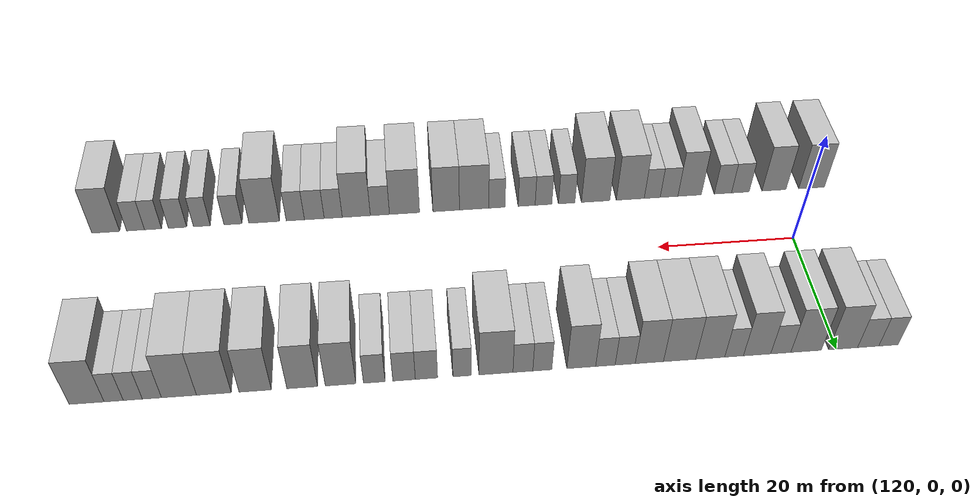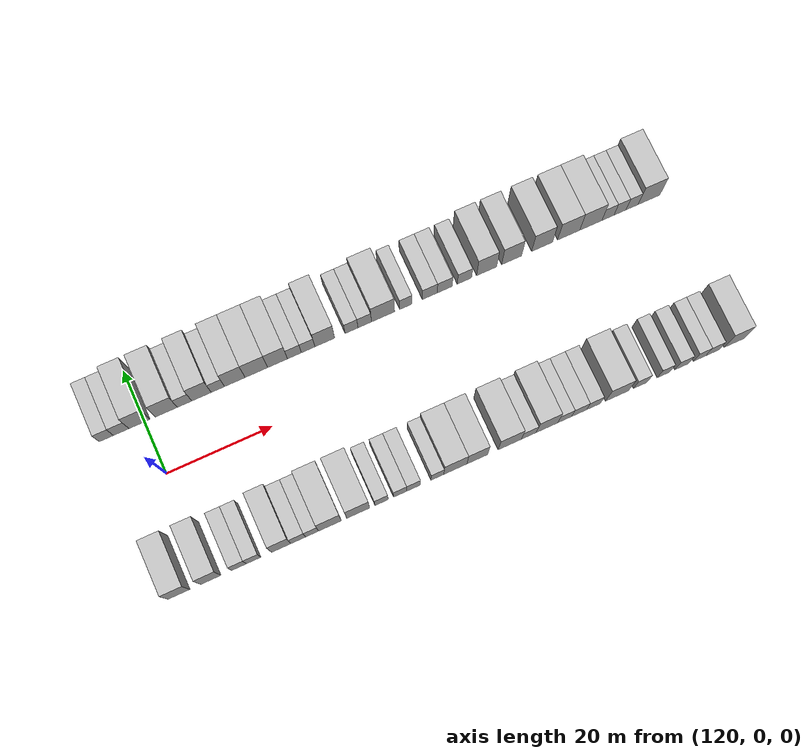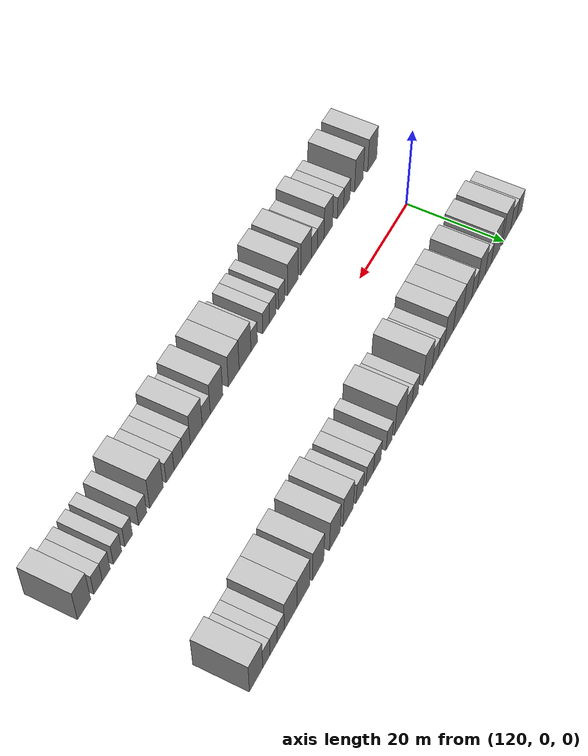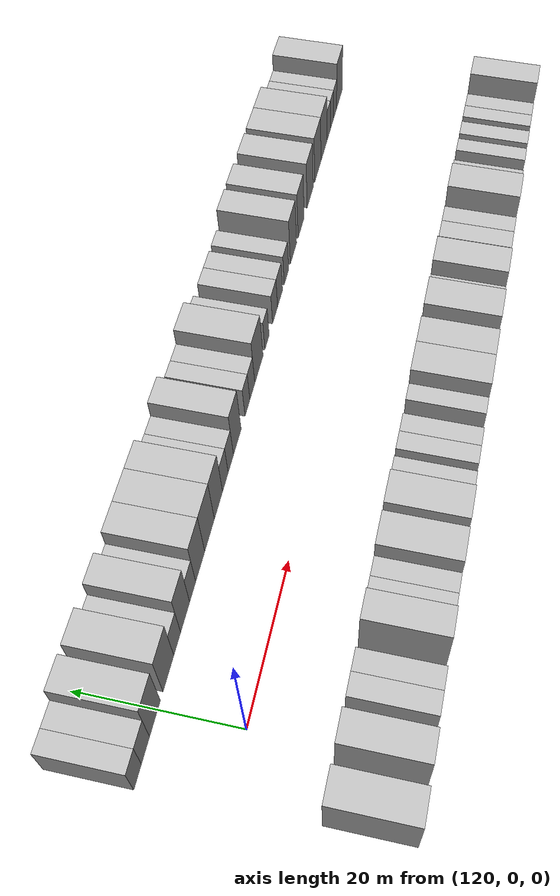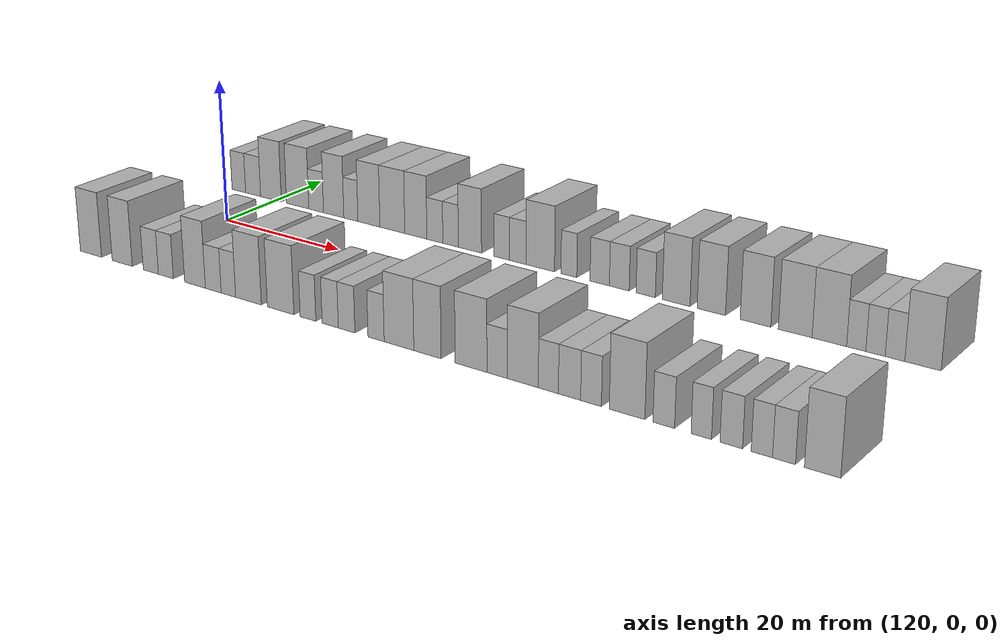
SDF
<sdf version="1.6">
 <world name="default">
  <model name="building_29">
   <static>1</static>
   <pose>112.8695 15.0000 0 0.000000 0.000000 1.570796</pose>
   <link name="link">
    <pose>0 0 3.00 0 0 0</pose>
    <collision name="collision"><geometry><box><size>10.0000 2.6580 6.0000</size></box></geometry></collision>
    <visual name="visual">
     <cast_shadows>0</cast_shadows>
     <geometry><box><size>10.0000 2.6580 6.0000</size></box></geometry>
     <material>
      <script>
       <uri>model://HANNAS_wall/materials/scripts</uri>
       <uri>model://HANNAS_wall/materials/textures</uri>
       <name>vrc/HANNAS_wall</name>
      </script>
     </material>
    </visual>
   </link>
  </model>
  <model name="building_30">
   <static>1</static>
   <pose>115.6552 15.0000 0 0.000000 0.000000 1.570796</pose>
   <link name="link">
    <pose>0 0 3.00 0 0 0</pose>
    <collision name="collision"><geometry><box><size>10.0000 2.9134 6.0000</size></box></geometry></collision>
    <visual name="visual">
     <cast_shadows>0</cast_shadows>
     <geometry><box><size>10.0000 2.9134 6.0000</size></box></geometry>
     <material>
      <script>
       <uri>model://HANNAS_wall/materials/scripts</uri>
       <uri>model://HANNAS_wall/materials/textures</uri>
       <name>vrc/HANNAS_wall</name>
      </script>
     </material>
    </visual>
   </link>
  </model>
  <model name="building_31">
   <static>1</static>
   <pose>119.0930 15.0000 0 0.000000 0.000000 1.570796</pose>
   <link name="link">
    <pose>0 0 4.50 0 0 0</pose>
    <collision name="collision"><geometry><box><size>10.0000 3.9621 9.0000</size></box></geometry></collision>
    <visual name="visual">
     <cast_shadows>0</cast_shadows>
     <geometry><box><size>10.0000 3.9621 9.0000</size></box></geometry>
     <material>
      <script>
       <uri>model://HANNAS_wall/materials/scripts</uri>
       <uri>model://HANNAS_wall/materials/textures</uri>
       <name>vrc/HANNAS_wall</name>
      </script>
     </material>
    </visual>
   </link>
  </model>
  <model name="building_32">
   <static>1</static>
   <pose>124.1526 15.0000 0 0.000000 0.000000 1.570796</pose>
   <link name="link">
    <pose>0 0 4.50 0 0 0</pose>
    <collision name="collision"><geometry><box><size>10.0000 4.1572 9.0000</size></box></geometry></collision>
    <visual name="visual">
     <cast_shadows>0</cast_shadows>
     <geometry><box><size>10.0000 4.1572 9.0000</size></box></geometry>
     <material>
      <script>
       <uri>model://HANNAS_wall/materials/scripts</uri>
       <uri>model://HANNAS_wall/materials/textures</uri>
       <name>vrc/HANNAS_wall</name>
      </script>
     </material>
    </visual>
   </link>
  </model>
  <model name="building_33">
   <static>1</static>
   <pose>127.5959 15.0000 0 0.000000 0.000000 1.570796</pose>
   <link name="link">
    <pose>0 0 3.00 0 0 0</pose>
    <collision name="collision"><geometry><box><size>10.0000 2.7294 6.0000</size></box></geometry></collision>
    <visual name="visual">
     <cast_shadows>0</cast_shadows>
     <geometry><box><size>10.0000 2.7294 6.0000</size></box></geometry>
     <material>
      <script>
       <uri>model://HANNAS_wall/materials/scripts</uri>
       <uri>model://HANNAS_wall/materials/textures</uri>
       <name>vrc/HANNAS_wall</name>
      </script>
     </material>
    </visual>
   </link>
  </model>
  <model name="building_34">
   <static>1</static>
   <pose>130.8069 15.0000 0 0.000000 0.000000 1.570796</pose>
   <link name="link">
    <pose>0 0 4.50 0 0 0</pose>
    <collision name="collision"><geometry><box><size>10.0000 3.6927 9.0000</size></box></geometry></collision>
    <visual name="visual">
     <cast_shadows>0</cast_shadows>
     <geometry><box><size>10.0000 3.6927 9.0000</size></box></geometry>
     <material>
      <script>
       <uri>model://HANNAS_wall/materials/scripts</uri>
       <uri>model://HANNAS_wall/materials/textures</uri>
       <name>vrc/HANNAS_wall</name>
      </script>
     </material>
    </visual>
   </link>
  </model>
  <model name="building_35">
   <static>1</static>
   <pose>133.9190 15.0000 0 0.000000 0.000000 1.570796</pose>
   <link name="link">
    <pose>0 0 3.00 0 0 0</pose>
    <collision name="collision"><geometry><box><size>10.0000 2.5314 6.0000</size></box></geometry></collision>
    <visual name="visual">
     <cast_shadows>0</cast_shadows>
     <geometry><box><size>10.0000 2.5314 6.0000</size></box></geometry>
     <material>
      <script>
       <uri>model://HANNAS_wall/materials/scripts</uri>
       <uri>model://HANNAS_wall/materials/textures</uri>
       <name>vrc/HANNAS_wall</name>
      </script>
     </material>
    </visual>
   </link>
  </model>
  <model name="building_36">
   <static>1</static>
   <pose>137.1407 15.0000 0 0.000000 0.000000 1.570796</pose>
   <link name="link">
    <pose>0 0 4.50 0 0 0</pose>
    <collision name="collision"><geometry><box><size>10.0000 3.9121 9.0000</size></box></geometry></collision>
    <visual name="visual">
     <cast_shadows>0</cast_shadows>
     <geometry><box><size>10.0000 3.9121 9.0000</size></box></geometry>
     <material>
      <script>
       <uri>model://HANNAS_wall/materials/scripts</uri>
       <uri>model://HANNAS_wall/materials/textures</uri>
       <name>vrc/HANNAS_wall</name>
      </script>
     </material>
    </visual>
   </link>
  </model>
  <model name="building_37">
   <static>1</static>
   <pose>141.2572 15.0000 0 0.000000 0.000000 1.570796</pose>
   <link name="link">
    <pose>0 0 4.50 0 0 0</pose>
    <collision name="collision"><geometry><box><size>10.0000 4.3211 9.0000</size></box></geometry></collision>
    <visual name="visual">
     <cast_shadows>0</cast_shadows>
     <geometry><box><size>10.0000 4.3211 9.0000</size></box></geometry>
     <material>
      <script>
       <uri>model://HANNAS_wall/materials/scripts</uri>
       <uri>model://HANNAS_wall/materials/textures</uri>
       <name>vrc/HANNAS_wall</name>
      </script>
     </material>
    </visual>
   </link>
  </model>
  <model name="building_38">
   <static>1</static>
   <pose>145.3111 15.0000 0 0.000000 0.000000 1.570796</pose>
   <link name="link">
    <pose>0 0 4.50 0 0 0</pose>
    <collision name="collision"><geometry><box><size>10.0000 3.7867 9.0000</size></box></geometry></collision>
    <visual name="visual">
     <cast_shadows>0</cast_shadows>
     <geometry><box><size>10.0000 3.7867 9.0000</size></box></geometry>
     <material>
      <script>
       <uri>model://HANNAS_wall/materials/scripts</uri>
       <uri>model://HANNAS_wall/materials/textures</uri>
       <name>vrc/HANNAS_wall</name>
      </script>
     </material>
    </visual>
   </link>
  </model>
  <model name="building_39">
   <static>1</static>
   <pose>148.5455 15.0000 0 0.000000 0.000000 1.570796</pose>
   <link name="link">
    <pose>0 0 3.00 0 0 0</pose>
    <collision name="collision"><geometry><box><size>10.0000 2.6821 6.0000</size></box></geometry></collision>
    <visual name="visual">
     <cast_shadows>0</cast_shadows>
     <geometry><box><size>10.0000 2.6821 6.0000</size></box></geometry>
     <material>
      <script>
       <uri>model://HANNAS_wall/materials/scripts</uri>
       <uri>model://HANNAS_wall/materials/textures</uri>
       <name>vrc/HANNAS_wall</name>
      </script>
     </material>
    </visual>
   </link>
  </model>
  <model name="building_40">
   <static>1</static>
   <pose>151.1820 15.0000 0 0.000000 0.000000 1.570796</pose>
   <link name="link">
    <pose>0 0 3.00 0 0 0</pose>
    <collision name="collision"><geometry><box><size>10.0000 2.5909 6.0000</size></box></geometry></collision>
    <visual name="visual">
     <cast_shadows>0</cast_shadows>
     <geometry><box><size>10.0000 2.5909 6.0000</size></box></geometry>
     <material>
      <script>
       <uri>model://HANNAS_wall/materials/scripts</uri>
       <uri>model://HANNAS_wall/materials/textures</uri>
       <name>vrc/HANNAS_wall</name>
      </script>
     </material>
    </visual>
   </link>
  </model>
  <model name="building_41">
   <static>1</static>
   <pose>154.3863 15.0000 0 0.000000 0.000000 1.570796</pose>
   <link name="link">
    <pose>0 0 4.50 0 0 0</pose>
    <collision name="collision"><geometry><box><size>10.0000 3.8178 9.0000</size></box></geometry></collision>
    <visual name="visual">
     <cast_shadows>0</cast_shadows>
     <geometry><box><size>10.0000 3.8178 9.0000</size></box></geometry>
     <material>
      <script>
       <uri>model://HANNAS_wall/materials/scripts</uri>
       <uri>model://HANNAS_wall/materials/textures</uri>
       <name>vrc/HANNAS_wall</name>
      </script>
     </material>
    </visual>
   </link>
  </model>
  <model name="building_42">
   <static>1</static>
   <pose>159.5500 15.0000 0 0.000000 0.000000 1.570796</pose>
   <link name="link">
    <pose>0 0 3.00 0 0 0</pose>
    <collision name="collision"><geometry><box><size>10.0000 2.5095 6.0000</size></box></geometry></collision>
    <visual name="visual">
     <cast_shadows>0</cast_shadows>
     <geometry><box><size>10.0000 2.5095 6.0000</size></box></geometry>
     <material>
      <script>
       <uri>model://HANNAS_wall/materials/scripts</uri>
       <uri>model://HANNAS_wall/materials/textures</uri>
       <name>vrc/HANNAS_wall</name>
      </script>
     </material>
    </visual>
   </link>
  </model>
  <model name="building_43">
   <static>1</static>
   <pose>162.1150 15.0000 0 0.000000 0.000000 1.570796</pose>
   <link name="link">
    <pose>0 0 3.00 0 0 0</pose>
    <collision name="collision"><geometry><box><size>10.0000 2.6204 6.0000</size></box></geometry></collision>
    <visual name="visual">
     <cast_shadows>0</cast_shadows>
     <geometry><box><size>10.0000 2.6204 6.0000</size></box></geometry>
     <material>
      <script>
       <uri>model://HANNAS_wall/materials/scripts</uri>
       <uri>model://HANNAS_wall/materials/textures</uri>
       <name>vrc/HANNAS_wall</name>
      </script>
     </material>
    </visual>
   </link>
  </model>
  <model name="building_44">
   <static>1</static>
   <pose>165.6594 15.0000 0 0.000000 0.000000 1.570796</pose>
   <link name="link">
    <pose>0 0 4.50 0 0 0</pose>
    <collision name="collision"><geometry><box><size>10.0000 4.4684 9.0000</size></box></geometry></collision>
    <visual name="visual">
     <cast_shadows>0</cast_shadows>
     <geometry><box><size>10.0000 4.4684 9.0000</size></box></geometry>
     <material>
      <script>
       <uri>model://HANNAS_wall/materials/scripts</uri>
       <uri>model://HANNAS_wall/materials/textures</uri>
       <name>vrc/HANNAS_wall</name>
      </script>
     </material>
    </visual>
   </link>
  </model>
  <model name="building_45">
   <static>1</static>
   <pose>170.1038 15.0000 0 0.000000 0.000000 1.570796</pose>
   <link name="link">
    <pose>0 0 3.00 0 0 0</pose>
    <collision name="collision"><geometry><box><size>10.0000 2.4204 6.0000</size></box></geometry></collision>
    <visual name="visual">
     <cast_shadows>0</cast_shadows>
     <geometry><box><size>10.0000 2.4204 6.0000</size></box></geometry>
     <material>
      <script>
       <uri>model://HANNAS_wall/materials/scripts</uri>
       <uri>model://HANNAS_wall/materials/textures</uri>
       <name>vrc/HANNAS_wall</name>
      </script>
     </material>
    </visual>
   </link>
  </model>
  <model name="building_46">
   <static>1</static>
   <pose>174.7673 15.0000 0 0.000000 0.000000 1.570796</pose>
   <link name="link">
    <pose>0 0 3.00 0 0 0</pose>
    <collision name="collision"><geometry><box><size>10.0000 2.9066 6.0000</size></box></geometry></collision>
    <visual name="visual">
     <cast_shadows>0</cast_shadows>
     <geometry><box><size>10.0000 2.9066 6.0000</size></box></geometry>
     <material>
      <script>
       <uri>model://HANNAS_wall/materials/scripts</uri>
       <uri>model://HANNAS_wall/materials/textures</uri>
       <name>vrc/HANNAS_wall</name>
      </script>
     </material>
    </visual>
   </link>
  </model>
  <model name="building_47">
   <static>1</static>
   <pose>177.6863 15.0000 0 0.000000 0.000000 1.570796</pose>
   <link name="link">
    <pose>0 0 3.00 0 0 0</pose>
    <collision name="collision"><geometry><box><size>10.0000 2.9313 6.0000</size></box></geometry></collision>
    <visual name="visual">
     <cast_shadows>0</cast_shadows>
     <geometry><box><size>10.0000 2.9313 6.0000</size></box></geometry>
     <material>
      <script>
       <uri>model://HANNAS_wall/materials/scripts</uri>
       <uri>model://HANNAS_wall/materials/textures</uri>
       <name>vrc/HANNAS_wall</name>
      </script>
     </material>
    </visual>
   </link>
  </model>
  <model name="building_48">
   <static>1</static>
   <pose>181.5532 15.0000 0 0.000000 0.000000 1.570796</pose>
   <link name="link">
    <pose>0 0 3.00 0 0 0</pose>
    <collision name="collision"><geometry><box><size>10.0000 2.8025 6.0000</size></box></geometry></collision>
    <visual name="visual">
     <cast_shadows>0</cast_shadows>
     <geometry><box><size>10.0000 2.8025 6.0000</size></box></geometry>
     <material>
      <script>
       <uri>model://HANNAS_wall/materials/scripts</uri>
       <uri>model://HANNAS_wall/materials/textures</uri>
       <name>vrc/HANNAS_wall</name>
      </script>
     </material>
    </visual>
   </link>
  </model>
  <model name="building_49">
   <static>1</static>
   <pose>185.9270 15.0000 0 0.000000 0.000000 1.570796</pose>
   <link name="link">
    <pose>0 0 4.50 0 0 0</pose>
    <collision name="collision"><geometry><box><size>10.0000 3.9450 9.0000</size></box></geometry></collision>
    <visual name="visual">
     <cast_shadows>0</cast_shadows>
     <geometry><box><size>10.0000 3.9450 9.0000</size></box></geometry>
     <material>
      <script>
       <uri>model://HANNAS_wall/materials/scripts</uri>
       <uri>model://HANNAS_wall/materials/textures</uri>
       <name>vrc/HANNAS_wall</name>
      </script>
     </material>
    </visual>
   </link>
  </model>
  <model name="building_50">
   <static>1</static>
   <pose>190.8726 15.0000 0 0.000000 0.000000 1.570796</pose>
   <link name="link">
    <pose>0 0 4.50 0 0 0</pose>
    <collision name="collision"><geometry><box><size>10.0000 3.9462 9.0000</size></box></geometry></collision>
    <visual name="visual">
     <cast_shadows>0</cast_shadows>
     <geometry><box><size>10.0000 3.9462 9.0000</size></box></geometry>
     <material>
      <script>
       <uri>model://HANNAS_wall/materials/scripts</uri>
       <uri>model://HANNAS_wall/materials/textures</uri>
       <name>vrc/HANNAS_wall</name>
      </script>
     </material>
    </visual>
   </link>
  </model>
  <model name="building_51">
   <static>1</static>
   <pose>196.9149 15.0000 0 0.000000 0.000000 1.570796</pose>
   <link name="link">
    <pose>0 0 4.50 0 0 0</pose>
    <collision name="collision"><geometry><box><size>10.0000 4.1385 9.0000</size></box></geometry></collision>
    <visual name="visual">
     <cast_shadows>0</cast_shadows>
     <geometry><box><size>10.0000 4.1385 9.0000</size></box></geometry>
     <material>
      <script>
       <uri>model://HANNAS_wall/materials/scripts</uri>
       <uri>model://HANNAS_wall/materials/textures</uri>
       <name>vrc/HANNAS_wall</name>
      </script>
     </material>
    </visual>
   </link>
  </model>
  <model name="building_52">
   <static>1</static>
   <pose>202.2018 15.0000 0 0.000000 0.000000 1.570796</pose>
   <link name="link">
    <pose>0 0 4.50 0 0 0</pose>
    <collision name="collision"><geometry><box><size>10.0000 4.4352 9.0000</size></box></geometry></collision>
    <visual name="visual">
     <cast_shadows>0</cast_shadows>
     <geometry><box><size>10.0000 4.4352 9.0000</size></box></geometry>
     <material>
      <script>
       <uri>model://HANNAS_wall/materials/scripts</uri>
       <uri>model://HANNAS_wall/materials/textures</uri>
       <name>vrc/HANNAS_wall</name>
      </script>
     </material>
    </visual>
   </link>
  </model>
  <model name="building_53">
   <static>1</static>
   <pose>206.6403 15.0000 0 0.000000 0.000000 1.570796</pose>
   <link name="link">
    <pose>0 0 4.50 0 0 0</pose>
    <collision name="collision"><geometry><box><size>10.0000 4.4420 9.0000</size></box></geometry></collision>
    <visual name="visual">
     <cast_shadows>0</cast_shadows>
     <geometry><box><size>10.0000 4.4420 9.0000</size></box></geometry>
     <material>
      <script>
       <uri>model://HANNAS_wall/materials/scripts</uri>
       <uri>model://HANNAS_wall/materials/textures</uri>
       <name>vrc/HANNAS_wall</name>
      </script>
     </material>
    </visual>
   </link>
  </model>
  <model name="building_54">
   <static>1</static>
   <pose>210.0744 15.0000 0 0.000000 0.000000 1.570796</pose>
   <link name="link">
    <pose>0 0 3.00 0 0 0</pose>
    <collision name="collision"><geometry><box><size>10.0000 2.4262 6.0000</size></box></geometry></collision>
    <visual name="visual">
     <cast_shadows>0</cast_shadows>
     <geometry><box><size>10.0000 2.4262 6.0000</size></box></geometry>
     <material>
      <script>
       <uri>model://HANNAS_wall/materials/scripts</uri>
       <uri>model://HANNAS_wall/materials/textures</uri>
       <name>vrc/HANNAS_wall</name>
      </script>
     </material>
    </visual>
   </link>
  </model>
  <model name="building_55">
   <static>1</static>
   <pose>212.4924 15.0000 0 0.000000 0.000000 1.570796</pose>
   <link name="link">
    <pose>0 0 3.00 0 0 0</pose>
    <collision name="collision"><geometry><box><size>10.0000 2.4098 6.0000</size></box></geometry></collision>
    <visual name="visual">
     <cast_shadows>0</cast_shadows>
     <geometry><box><size>10.0000 2.4098 6.0000</size></box></geometry>
     <material>
      <script>
       <uri>model://HANNAS_wall/materials/scripts</uri>
       <uri>model://HANNAS_wall/materials/textures</uri>
       <name>vrc/HANNAS_wall</name>
      </script>
     </material>
    </visual>
   </link>
  </model>
  <model name="building_56">
   <static>1</static>
   <pose>214.9073 15.0000 0 0.000000 0.000000 1.570796</pose>
   <link name="link">
    <pose>0 0 3.00 0 0 0</pose>
    <collision name="collision"><geometry><box><size>10.0000 2.4200 6.0000</size></box></geometry></collision>
    <visual name="visual">
     <cast_shadows>0</cast_shadows>
     <geometry><box><size>10.0000 2.4200 6.0000</size></box></geometry>
     <material>
      <script>
       <uri>model://HANNAS_wall/materials/scripts</uri>
       <uri>model://HANNAS_wall/materials/textures</uri>
       <name>vrc/HANNAS_wall</name>
      </script>
     </material>
    </visual>
   </link>
  </model>
  <model name="building_57">
   <static>1</static>
   <pose>218.3203 15.0000 0 0.000000 0.000000 1.570796</pose>
   <link name="link">
    <pose>0 0 4.50 0 0 0</pose>
    <collision name="collision"><geometry><box><size>10.0000 4.4059 9.0000</size></box></geometry></collision>
    <visual name="visual">
     <cast_shadows>0</cast_shadows>
     <geometry><box><size>10.0000 4.4059 9.0000</size></box></geometry>
     <material>
      <script>
       <uri>model://HANNAS_wall/materials/scripts</uri>
       <uri>model://HANNAS_wall/materials/textures</uri>
       <name>vrc/HANNAS_wall</name>
      </script>
     </material>
    </visual>
   </link>
  </model>
  <model name="building_87">
   <static>1</static>
   <pose>114.1880 -15.0000 0 0.000000 0.000000 1.570796</pose>
   <link name="link">
    <pose>0 0 4.50 0 0 0</pose>
    <collision name="collision"><geometry><box><size>10.0000 4.0079 9.0000</size></box></geometry></collision>
    <visual name="visual">
     <cast_shadows>0</cast_shadows>
     <geometry><box><size>10.0000 4.0079 9.0000</size></box></geometry>
     <material>
      <script>
       <uri>model://HANNAS_wall/materials/scripts</uri>
       <uri>model://HANNAS_wall/materials/textures</uri>
       <name>vrc/HANNAS_wall</name>
      </script>
     </material>
    </visual>
   </link>
  </model>
  <model name="building_88">
   <static>1</static>
   <pose>120.0512 -15.0000 0 0.000000 0.000000 1.570796</pose>
   <link name="link">
    <pose>0 0 4.50 0 0 0</pose>
    <collision name="collision"><geometry><box><size>10.0000 3.7185 9.0000</size></box></geometry></collision>
    <visual name="visual">
     <cast_shadows>0</cast_shadows>
     <geometry><box><size>10.0000 3.7185 9.0000</size></box></geometry>
     <material>
      <script>
       <uri>model://HANNAS_wall/materials/scripts</uri>
       <uri>model://HANNAS_wall/materials/textures</uri>
       <name>vrc/HANNAS_wall</name>
      </script>
     </material>
    </visual>
   </link>
  </model>
  <model name="building_89">
   <static>1</static>
   <pose>125.2764 -15.0000 0 0.000000 0.000000 1.570796</pose>
   <link name="link">
    <pose>0 0 3.00 0 0 0</pose>
    <collision name="collision"><geometry><box><size>10.0000 2.7319 6.0000</size></box></geometry></collision>
    <visual name="visual">
     <cast_shadows>0</cast_shadows>
     <geometry><box><size>10.0000 2.7319 6.0000</size></box></geometry>
     <material>
      <script>
       <uri>model://HANNAS_wall/materials/scripts</uri>
       <uri>model://HANNAS_wall/materials/textures</uri>
       <name>vrc/HANNAS_wall</name>
      </script>
     </material>
    </visual>
   </link>
  </model>
  <model name="building_90">
   <static>1</static>
   <pose>127.9747 -15.0000 0 0.000000 0.000000 1.570796</pose>
   <link name="link">
    <pose>0 0 3.00 0 0 0</pose>
    <collision name="collision"><geometry><box><size>10.0000 2.6647 6.0000</size></box></geometry></collision>
    <visual name="visual">
     <cast_shadows>0</cast_shadows>
     <geometry><box><size>10.0000 2.6647 6.0000</size></box></geometry>
     <material>
      <script>
       <uri>model://HANNAS_wall/materials/scripts</uri>
       <uri>model://HANNAS_wall/materials/textures</uri>
       <name>vrc/HANNAS_wall</name>
      </script>
     </material>
    </visual>
   </link>
  </model>
  <model name="building_91">
   <static>1</static>
   <pose>133.1096 -15.0000 0 0.000000 0.000000 1.570796</pose>
   <link name="link">
    <pose>0 0 4.50 0 0 0</pose>
    <collision name="collision"><geometry><box><size>10.0000 3.6052 9.0000</size></box></geometry></collision>
    <visual name="visual">
     <cast_shadows>0</cast_shadows>
     <geometry><box><size>10.0000 3.6052 9.0000</size></box></geometry>
     <material>
      <script>
       <uri>model://HANNAS_wall/materials/scripts</uri>
       <uri>model://HANNAS_wall/materials/textures</uri>
       <name>vrc/HANNAS_wall</name>
      </script>
     </material>
    </visual>
   </link>
  </model>
  <model name="building_92">
   <static>1</static>
   <pose>136.2700 -15.0000 0 0.000000 0.000000 1.570796</pose>
   <link name="link">
    <pose>0 0 3.00 0 0 0</pose>
    <collision name="collision"><geometry><box><size>10.0000 2.7156 6.0000</size></box></geometry></collision>
    <visual name="visual">
     <cast_shadows>0</cast_shadows>
     <geometry><box><size>10.0000 2.7156 6.0000</size></box></geometry>
     <material>
      <script>
       <uri>model://HANNAS_wall/materials/scripts</uri>
       <uri>model://HANNAS_wall/materials/textures</uri>
       <name>vrc/HANNAS_wall</name>
      </script>
     </material>
    </visual>
   </link>
  </model>
  <model name="building_93">
   <static>1</static>
   <pose>138.8516 -15.0000 0 0.000000 0.000000 1.570796</pose>
   <link name="link">
    <pose>0 0 3.00 0 0 0</pose>
    <collision name="collision"><geometry><box><size>10.0000 2.4476 6.0000</size></box></geometry></collision>
    <visual name="visual">
     <cast_shadows>0</cast_shadows>
     <geometry><box><size>10.0000 2.4476 6.0000</size></box></geometry>
     <material>
      <script>
       <uri>model://HANNAS_wall/materials/scripts</uri>
       <uri>model://HANNAS_wall/materials/textures</uri>
       <name>vrc/HANNAS_wall</name>
      </script>
     </material>
    </visual>
   </link>
  </model>
  <model name="building_94">
   <static>1</static>
   <pose>142.2176 -15.0000 0 0.000000 0.000000 1.570796</pose>
   <link name="link">
    <pose>0 0 4.50 0 0 0</pose>
    <collision name="collision"><geometry><box><size>10.0000 4.2845 9.0000</size></box></geometry></collision>
    <visual name="visual">
     <cast_shadows>0</cast_shadows>
     <geometry><box><size>10.0000 4.2845 9.0000</size></box></geometry>
     <material>
      <script>
       <uri>model://HANNAS_wall/materials/scripts</uri>
       <uri>model://HANNAS_wall/materials/textures</uri>
       <name>vrc/HANNAS_wall</name>
      </script>
     </material>
    </visual>
   </link>
  </model>
  <model name="building_95">
   <static>1</static>
   <pose>147.5184 -15.0000 0 0.000000 0.000000 1.570796</pose>
   <link name="link">
    <pose>0 0 4.50 0 0 0</pose>
    <collision name="collision"><geometry><box><size>10.0000 4.3171 9.0000</size></box></geometry></collision>
    <visual name="visual">
     <cast_shadows>0</cast_shadows>
     <geometry><box><size>10.0000 4.3171 9.0000</size></box></geometry>
     <material>
      <script>
       <uri>model://HANNAS_wall/materials/scripts</uri>
       <uri>model://HANNAS_wall/materials/textures</uri>
       <name>vrc/HANNAS_wall</name>
      </script>
     </material>
    </visual>
   </link>
  </model>
  <model name="building_96">
   <static>1</static>
   <pose>151.9259 -15.0000 0 0.000000 0.000000 1.570796</pose>
   <link name="link">
    <pose>0 0 3.00 0 0 0</pose>
    <collision name="collision"><geometry><box><size>10.0000 2.4979 6.0000</size></box></geometry></collision>
    <visual name="visual">
     <cast_shadows>0</cast_shadows>
     <geometry><box><size>10.0000 2.4979 6.0000</size></box></geometry>
     <material>
      <script>
       <uri>model://HANNAS_wall/materials/scripts</uri>
       <uri>model://HANNAS_wall/materials/textures</uri>
       <name>vrc/HANNAS_wall</name>
      </script>
     </material>
    </visual>
   </link>
  </model>
  <model name="building_97">
   <static>1</static>
   <pose>155.4397 -15.0000 0 0.000000 0.000000 1.570796</pose>
   <link name="link">
    <pose>0 0 3.00 0 0 0</pose>
    <collision name="collision"><geometry><box><size>10.0000 2.5298 6.0000</size></box></geometry></collision>
    <visual name="visual">
     <cast_shadows>0</cast_shadows>
     <geometry><box><size>10.0000 2.5298 6.0000</size></box></geometry>
     <material>
      <script>
       <uri>model://HANNAS_wall/materials/scripts</uri>
       <uri>model://HANNAS_wall/materials/textures</uri>
       <name>vrc/HANNAS_wall</name>
      </script>
     </material>
    </visual>
   </link>
  </model>
  <model name="building_98">
   <static>1</static>
   <pose>157.9842 -15.0000 0 0.000000 0.000000 1.570796</pose>
   <link name="link">
    <pose>0 0 3.00 0 0 0</pose>
    <collision name="collision"><geometry><box><size>10.0000 2.5592 6.0000</size></box></geometry></collision>
    <visual name="visual">
     <cast_shadows>0</cast_shadows>
     <geometry><box><size>10.0000 2.5592 6.0000</size></box></geometry>
     <material>
      <script>
       <uri>model://HANNAS_wall/materials/scripts</uri>
       <uri>model://HANNAS_wall/materials/textures</uri>
       <name>vrc/HANNAS_wall</name>
      </script>
     </material>
    </visual>
   </link>
  </model>
  <model name="building_99">
   <static>1</static>
   <pose>162.4889 -15.0000 0 0.000000 0.000000 1.570796</pose>
   <link name="link">
    <pose>0 0 3.00 0 0 0</pose>
    <collision name="collision"><geometry><box><size>10.0000 2.4500 6.0000</size></box></geometry></collision>
    <visual name="visual">
     <cast_shadows>0</cast_shadows>
     <geometry><box><size>10.0000 2.4500 6.0000</size></box></geometry>
     <material>
      <script>
       <uri>model://HANNAS_wall/materials/scripts</uri>
       <uri>model://HANNAS_wall/materials/textures</uri>
       <name>vrc/HANNAS_wall</name>
      </script>
     </material>
    </visual>
   </link>
  </model>
  <model name="building_100">
   <static>1</static>
   <pose>165.9148 -15.0000 0 0.000000 0.000000 1.570796</pose>
   <link name="link">
    <pose>0 0 4.50 0 0 0</pose>
    <collision name="collision"><geometry><box><size>10.0000 4.4018 9.0000</size></box></geometry></collision>
    <visual name="visual">
     <cast_shadows>0</cast_shadows>
     <geometry><box><size>10.0000 4.4018 9.0000</size></box></geometry>
     <material>
      <script>
       <uri>model://HANNAS_wall/materials/scripts</uri>
       <uri>model://HANNAS_wall/materials/textures</uri>
       <name>vrc/HANNAS_wall</name>
      </script>
     </material>
    </visual>
   </link>
  </model>
  <model name="building_101">
   <static>1</static>
   <pose>170.0994 -15.0000 0 0.000000 0.000000 1.570796</pose>
   <link name="link">
    <pose>0 0 4.50 0 0 0</pose>
    <collision name="collision"><geometry><box><size>10.0000 3.9675 9.0000</size></box></geometry></collision>
    <visual name="visual">
     <cast_shadows>0</cast_shadows>
     <geometry><box><size>10.0000 3.9675 9.0000</size></box></geometry>
     <material>
      <script>
       <uri>model://HANNAS_wall/materials/scripts</uri>
       <uri>model://HANNAS_wall/materials/textures</uri>
       <name>vrc/HANNAS_wall</name>
      </script>
     </material>
    </visual>
   </link>
  </model>
  <model name="building_102">
   <static>1</static>
   <pose>176.3247 -15.0000 0 0.000000 0.000000 1.570796</pose>
   <link name="link">
    <pose>0 0 4.50 0 0 0</pose>
    <collision name="collision"><geometry><box><size>10.0000 4.4831 9.0000</size></box></geometry></collision>
    <visual name="visual">
     <cast_shadows>0</cast_shadows>
     <geometry><box><size>10.0000 4.4831 9.0000</size></box></geometry>
     <material>
      <script>
       <uri>model://HANNAS_wall/materials/scripts</uri>
       <uri>model://HANNAS_wall/materials/textures</uri>
       <name>vrc/HANNAS_wall</name>
      </script>
     </material>
    </visual>
   </link>
  </model>
  <model name="building_103">
   <static>1</static>
   <pose>179.9890 -15.0000 0 0.000000 0.000000 1.570796</pose>
   <link name="link">
    <pose>0 0 3.00 0 0 0</pose>
    <collision name="collision"><geometry><box><size>10.0000 2.8454 6.0000</size></box></geometry></collision>
    <visual name="visual">
     <cast_shadows>0</cast_shadows>
     <geometry><box><size>10.0000 2.8454 6.0000</size></box></geometry>
     <material>
      <script>
       <uri>model://HANNAS_wall/materials/scripts</uri>
       <uri>model://HANNAS_wall/materials/textures</uri>
       <name>vrc/HANNAS_wall</name>
      </script>
     </material>
    </visual>
   </link>
  </model>
  <model name="building_104">
   <static>1</static>
   <pose>183.4970 -15.0000 0 0.000000 0.000000 1.570796</pose>
   <link name="link">
    <pose>0 0 4.50 0 0 0</pose>
    <collision name="collision"><geometry><box><size>10.0000 4.1706 9.0000</size></box></geometry></collision>
    <visual name="visual">
     <cast_shadows>0</cast_shadows>
     <geometry><box><size>10.0000 4.1706 9.0000</size></box></geometry>
     <material>
      <script>
       <uri>model://HANNAS_wall/materials/scripts</uri>
       <uri>model://HANNAS_wall/materials/textures</uri>
       <name>vrc/HANNAS_wall</name>
      </script>
     </material>
    </visual>
   </link>
  </model>
  <model name="building_105">
   <static>1</static>
   <pose>186.9197 -15.0000 0 0.000000 0.000000 1.570796</pose>
   <link name="link">
    <pose>0 0 3.00 0 0 0</pose>
    <collision name="collision"><geometry><box><size>10.0000 2.6746 6.0000</size></box></geometry></collision>
    <visual name="visual">
     <cast_shadows>0</cast_shadows>
     <geometry><box><size>10.0000 2.6746 6.0000</size></box></geometry>
     <material>
      <script>
       <uri>model://HANNAS_wall/materials/scripts</uri>
       <uri>model://HANNAS_wall/materials/textures</uri>
       <name>vrc/HANNAS_wall</name>
      </script>
     </material>
    </visual>
   </link>
  </model>
  <model name="building_106">
   <static>1</static>
   <pose>189.7164 -15.0000 0 0.000000 0.000000 1.570796</pose>
   <link name="link">
    <pose>0 0 3.00 0 0 0</pose>
    <collision name="collision"><geometry><box><size>10.0000 2.9188 6.0000</size></box></geometry></collision>
    <visual name="visual">
     <cast_shadows>0</cast_shadows>
     <geometry><box><size>10.0000 2.9188 6.0000</size></box></geometry>
     <material>
      <script>
       <uri>model://HANNAS_wall/materials/scripts</uri>
       <uri>model://HANNAS_wall/materials/textures</uri>
       <name>vrc/HANNAS_wall</name>
      </script>
     </material>
    </visual>
   </link>
  </model>
  <model name="building_107">
   <static>1</static>
   <pose>192.5179 -15.0000 0 0.000000 0.000000 1.570796</pose>
   <link name="link">
    <pose>0 0 3.00 0 0 0</pose>
    <collision name="collision"><geometry><box><size>10.0000 2.6842 6.0000</size></box></geometry></collision>
    <visual name="visual">
     <cast_shadows>0</cast_shadows>
     <geometry><box><size>10.0000 2.6842 6.0000</size></box></geometry>
     <material>
      <script>
       <uri>model://HANNAS_wall/materials/scripts</uri>
       <uri>model://HANNAS_wall/materials/textures</uri>
       <name>vrc/HANNAS_wall</name>
      </script>
     </material>
    </visual>
   </link>
  </model>
  <model name="building_108">
   <static>1</static>
   <pose>197.1072 -15.0000 0 0.000000 0.000000 1.570796</pose>
   <link name="link">
    <pose>0 0 4.50 0 0 0</pose>
    <collision name="collision"><geometry><box><size>10.0000 4.4944 9.0000</size></box></geometry></collision>
    <visual name="visual">
     <cast_shadows>0</cast_shadows>
     <geometry><box><size>10.0000 4.4944 9.0000</size></box></geometry>
     <material>
      <script>
       <uri>model://HANNAS_wall/materials/scripts</uri>
       <uri>model://HANNAS_wall/materials/textures</uri>
       <name>vrc/HANNAS_wall</name>
      </script>
     </material>
    </visual>
   </link>
  </model>
  <model name="building_109">
   <static>1</static>
   <pose>201.6840 -15.0000 0 0.000000 0.000000 1.570796</pose>
   <link name="link">
    <pose>0 0 3.00 0 0 0</pose>
    <collision name="collision"><geometry><box><size>10.0000 2.6592 6.0000</size></box></geometry></collision>
    <visual name="visual">
     <cast_shadows>0</cast_shadows>
     <geometry><box><size>10.0000 2.6592 6.0000</size></box></geometry>
     <material>
      <script>
       <uri>model://HANNAS_wall/materials/scripts</uri>
       <uri>model://HANNAS_wall/materials/textures</uri>
       <name>vrc/HANNAS_wall</name>
      </script>
     </material>
    </visual>
   </link>
  </model>
  <model name="building_110">
   <static>1</static>
   <pose>206.2373 -15.0000 0 0.000000 0.000000 1.570796</pose>
   <link name="link">
    <pose>0 0 3.00 0 0 0</pose>
    <collision name="collision"><geometry><box><size>10.0000 2.4474 6.0000</size></box></geometry></collision>
    <visual name="visual">
     <cast_shadows>0</cast_shadows>
     <geometry><box><size>10.0000 2.4474 6.0000</size></box></geometry>
     <material>
      <script>
       <uri>model://HANNAS_wall/materials/scripts</uri>
       <uri>model://HANNAS_wall/materials/textures</uri>
       <name>vrc/HANNAS_wall</name>
      </script>
     </material>
    </visual>
   </link>
  </model>
  <model name="building_111">
   <static>1</static>
   <pose>209.7883 -15.0000 0 0.000000 0.000000 1.570796</pose>
   <link name="link">
    <pose>0 0 3.00 0 0 0</pose>
    <collision name="collision"><geometry><box><size>10.0000 2.6545 6.0000</size></box></geometry></collision>
    <visual name="visual">
     <cast_shadows>0</cast_shadows>
     <geometry><box><size>10.0000 2.6545 6.0000</size></box></geometry>
     <material>
      <script>
       <uri>model://HANNAS_wall/materials/scripts</uri>
       <uri>model://HANNAS_wall/materials/textures</uri>
       <name>vrc/HANNAS_wall</name>
      </script>
     </material>
    </visual>
   </link>
  </model>
  <model name="building_112">
   <static>1</static>
   <pose>213.3446 -15.0000 0 0.000000 0.000000 1.570796</pose>
   <link name="link">
    <pose>0 0 3.00 0 0 0</pose>
    <collision name="collision"><geometry><box><size>10.0000 2.4581 6.0000</size></box></geometry></collision>
    <visual name="visual">
     <cast_shadows>0</cast_shadows>
     <geometry><box><size>10.0000 2.4581 6.0000</size></box></geometry>
     <material>
      <script>
       <uri>model://HANNAS_wall/materials/scripts</uri>
       <uri>model://HANNAS_wall/materials/textures</uri>
       <name>vrc/HANNAS_wall</name>
      </script>
     </material>
    </visual>
   </link>
  </model>
  <model name="building_113">
   <static>1</static>
   <pose>215.8762 -15.0000 0 0.000000 0.000000 1.570796</pose>
   <link name="link">
    <pose>0 0 3.00 0 0 0</pose>
    <collision name="collision"><geometry><box><size>10.0000 2.6050 6.0000</size></box></geometry></collision>
    <visual name="visual">
     <cast_shadows>0</cast_shadows>
     <geometry><box><size>10.0000 2.6050 6.0000</size></box></geometry>
     <material>
      <script>
       <uri>model://HANNAS_wall/materials/scripts</uri>
       <uri>model://HANNAS_wall/materials/textures</uri>
       <name>vrc/HANNAS_wall</name>
      </script>
     </material>
    </visual>
   </link>
  </model>
  <model name="building_114">
   <static>1</static>
   <pose>220.1916 -15.0000 0 0.000000 0.000000 1.570796</pose>
   <link name="link">
    <pose>0 0 4.50 0 0 0</pose>
    <collision name="collision"><geometry><box><size>10.0000 4.0259 9.0000</size></box></geometry></collision>
    <visual name="visual">
     <cast_shadows>0</cast_shadows>
     <geometry><box><size>10.0000 4.0259 9.0000</size></box></geometry>
     <material>
      <script>
       <uri>model://HANNAS_wall/materials/scripts</uri>
       <uri>model://HANNAS_wall/materials/textures</uri>
       <name>vrc/HANNAS_wall</name>
      </script>
     </material>
    </visual>
   </link>
  </model>
 </world>
</sdf>
